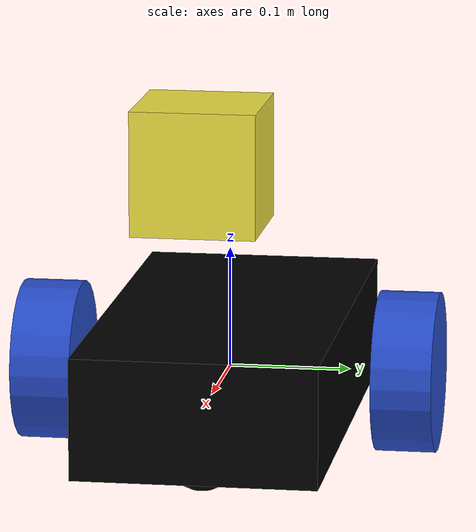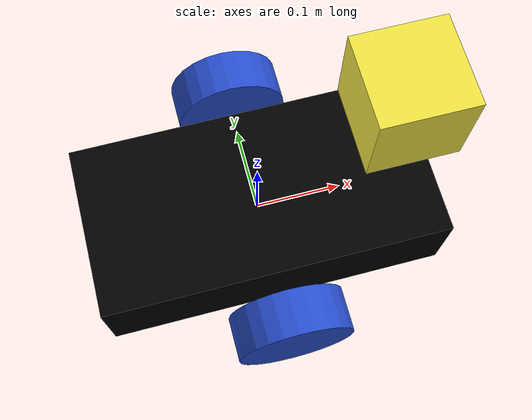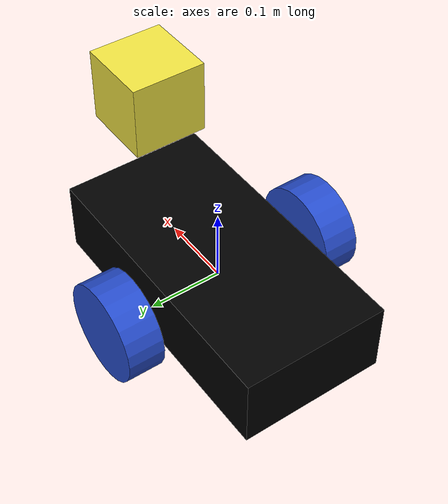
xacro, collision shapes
<?xml version='1.0'?>

<robot name="myrobot" xmlns:xacro="http://www.ros.org/wiki/xacro">

  <xacro:property name="cameraSize" value="0.05"/>
  <xacro:property name="cameraMass" value="0.1"/>

  <xacro:include filename="$(find uvd)/urdf/uvd.gazebo" />
  <xacro:include filename="$(find uvd)/urdf/materials.xacro" />
  <xacro:include filename="$(find uvd)/urdf/macros.xacro" />

  <link name='chassis'>
    <pose>0 0 0.1 0 0 0</pose>

    <inertial>
      <mass value="15.0"/>
      <origin xyz="0.0 0 0.1" rpy=" 0 0 0"/>
      <inertia
          ixx="0.1" ixy="0" ixz="0"
          iyy="0.1" iyz="0"
          izz="0.1"
      />
    </inertial>

    <collision name='collision'>
      <geometry>
        <box size=".4 .2 .1"/>
      </geometry>
    </collision>

   <visual name='chassis_visual'>
      <origin xyz="0.5348 0.21 -0.252" rpy=" 0 0 -1.57"/>
      <geometry>
        <mesh filename="package://uvd/meshes/chassis.STL" />
      </geometry>
      <material name="brown"/>
    </visual>

    <collision name='caster_collision'>
      <origin xyz="-0.15 0 -0.0333" rpy=" 0 0 0"/>
      <geometry>
        <sphere radius="0.0333"/>
      </geometry>
      <surface>
        <friction>
          <ode>
            <mu>0</mu>
            <mu2>0</mu2>
            <slip1>1.0</slip1>
            <slip2>1.0</slip2>
          </ode>
        </friction>
      </surface>
    </collision>

    <visual name='caster_visual'>
      <origin xyz="-0.15 0 -0.05" rpy=" 0 0 0"/>
      <geometry>
        <sphere radius="0.0005"/>
      </geometry>
    </visual>

    <collision name='caster_front_collision'>
      <origin xyz="0.15 0 -0.0333" rpy=" 0 0 0"/>
      <geometry>
        <sphere radius="0.0333"/>
      </geometry>
      <surface>
        <friction>
          <ode>
            <mu>0</mu>
            <mu2>0</mu2>
            <slip1>1.0</slip1>
            <slip2>1.0</slip2>
          </ode>
        </friction>
      </surface>
    </collision>

    <visual name='caster_front_visual'>
      <origin xyz="0.15 0 -0.05" rpy=" 0 0 0"/>
      <geometry>
        <sphere radius="0.0005"/>
      </geometry>
    </visual>

  </link>

  <link name="left_wheel">
    <!--origin xyz="0.1 0.13 0.1" rpy="0 1.5707 1.5707"/-->
    <collision name="collision">
      <origin xyz="0 0 0" rpy="0 1.5707 1.5707"/>
      <geometry>
        <cylinder radius="0.0666" length="0.05"/>
      </geometry>
    </collision>
     <visual name="left_wheel_visual">
      <origin xyz="0 0.027 0" rpy="1.57 0 0"/>
       <geometry>
        <mesh filename="package://uvd/meshes/lwheel.STL" />
      </geometry>
    </visual>
    <inertial>
      <origin xyz="0 0 0" rpy="0 1.5707 1.5707"/>
      <mass value="5"/>
      <inertia
        ixx=".1" ixy="0.0" ixz="0.0"
        iyy=".1" iyz="0.0"
        izz=".1"/>
    </inertial>
  </link>

  <link name="right_wheel">
    <!--origin xyz="0.1 -0.13 0.1" rpy="0 1.5707 1.5707"/-->
    <collision name="collision">
      <origin xyz="0 0 0" rpy="0 1.5707 1.5707"/>
      <geometry>
        <cylinder radius="0.0666" length="0.05"/>
      </geometry>
    </collision>
    <visual name="right_wheel_visual">
      <origin xyz="0 -0.1 0" rpy="1.57 0 0"/>
       <geometry>
        <mesh filename="package://uvd/meshes/rwheel.STL" />
      </geometry>
    </visual>
    <inertial>
      <origin xyz="0 0 0" rpy="0 1.5707 1.5707"/>
      <mass value="5"/>
      <inertia
        ixx=".1" ixy="0.0" ixz="0.0"
        iyy=".1" iyz="0.0"
        izz=".1"/>
    </inertial>
  </link>

  <joint type="continuous" name="left_wheel_hinge">
    <origin xyz="0 0.15 0" rpy="0 0 0"/>
    <!--origin xyz="0.1 0.13 0" rpy="0 1.5707 1.5707"/-->
    <child link="left_wheel"/>
    <parent link="chassis"/>
    <axis xyz="0 1 0" rpy="0 0 0"/>
    <limit effort="10000" velocity="1000"/>
    <joint_properties damping="1.0" friction="1.0"/>
  </joint>

  <joint type="continuous" name="right_wheel_hinge">
    <origin xyz="0 -0.15 0" rpy="0 0 0"/>
    <!--origin xyz="0.1 -0.13 0" rpy="0 1.5707 1.5707"/-->
    <child link="right_wheel"/>
    <parent link="chassis"/>
    <axis xyz="0 1 0" rpy="0 0 0"/>
    <limit effort="10000" velocity="1000"/>
    <joint_properties damping="1.0" friction="1.0"/>
  </joint>

  <!-- rplidar Laser -->
  <link name="laser">
    <collision>
      <origin xyz="0 0 0" rpy="0 0 0"/>
      <geometry>
    <box size="0.1 0.1 0.1"/>
      </geometry>
    </collision>

    <visual>
      <origin xyz="0 0 0" rpy="0 0 0"/>
      <geometry>
        <mesh filename="package://uvd/meshes/rplidar.dae" />
      </geometry>
    </visual>

    <inertial>
      <mass value="1e-5" />
      <origin xyz="0 0 0" rpy="0 0 0"/>
      <inertia ixx="1e-6" ixy="0" ixz="0" iyy="1e-6" iyz="0" izz="1e-6" />
    </inertial>
  </link>

  <joint name="rplidar_joint" type="fixed">
    <axis xyz="0 1 0" />
    <origin xyz=".15 0 .2" rpy="0 0 4.71"/>
    <parent link="chassis"/>
    <child link="laser"/>
  </joint>

  <link name="imu_link"/>
  <joint name="imu_joint" type="fixed">
    <parent link="chassis"/>
    <child link="imu_link"/>
    <origin xyz="-0.15 0 0.2" rpy="0 0 4.71"/>
  </joint>

 <gazebo>
    <plugin name="imu_plugin" filename="libgazebo_ros_imu.so">
      <alwaysOn>true</alwaysOn>
      <bodyName>imu_link</bodyName>
      <frameName>imu_link</frameName>
      <topicName>imu</topicName>
      <serviceName>imu_service</serviceName>
      <gaussianNoise>0.0</gaussianNoise>
      <updateRate>200</updateRate>
      <imu>
        <noise>
          <type>gaussian</type>
          <rate>
            <mean>0.0</mean>
            <stddev>2e-4</stddev>
            <bias_mean>0.0000075</bias_mean>
            <bias_stddev>0.0000008</bias_stddev>
          </rate>
          <accel>
            <mean>0.0</mean>
            <stddev>1.7e-2</stddev>
            <bias_mean>0.1</bias_mean>
            <bias_stddev>0.001</bias_stddev>
          </accel>
        </noise>
      </imu>
    </plugin>
  </gazebo>
</robot>

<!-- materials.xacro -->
<robot>

  <material name="black">
    <color rgba="0.0 0.0 0.0 1.0"/>
  </material>

  <material name="blue">
  <color rgba="15 93 239 1.0"/>
  </material>

  <material name="green">
    <color rgba="0.0 0.0 0.0 1.0"/>
  </material>

  <material name="grey">
    <color rgba="46 49 49 1.0"/>
  </material>

  <material name="orange">
    <color rgba="0.0 0.0 0.0 1.0"/>
  </material>

  <material name="brown">
    <color rgba="0 0 0 1.0"/>
  </material>

  <material name="red">
      <color rgba="0 0 0 1.0"/>
  </material>

  <material name="white">
    <color rgba="1.0 1.0 1.0 1.0"/>
  </material>

</robot>
